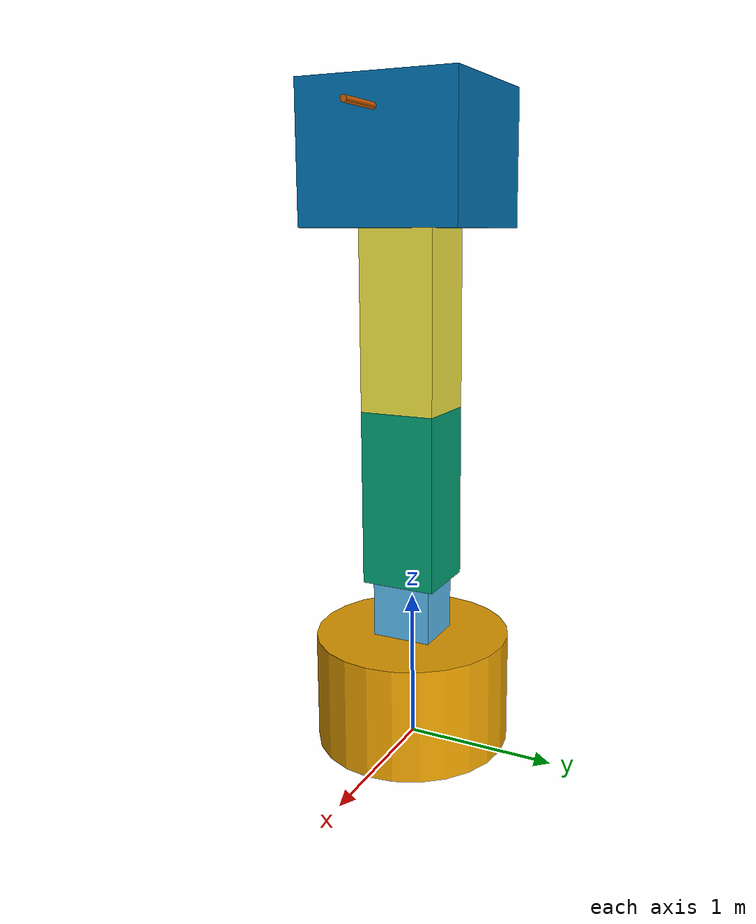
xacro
<?xml version="1.0" ?>

<!--            arm3.urdf.xacro              -->
<!-- This document describes the robot model -->
<!--   Machenical Practice Testing Version   -->
<!--        Last editted: 12/04, 2018        -->
<!--            Editor: Wolf Chen            -->

<robot name="arm" xmlns:xacro="http://www.ros.org/wiki/xacro">

  <!-- BGN - Include -->
  <xacro:include filename="$(find arm_description)/urdf/links_joints.xacro"/>
  <xacro:include filename="$(find arm_description)/urdf/robot_parameters.xacro"/>
  <xacro:include filename="$(find arm_description)/urdf/robot_parameters_ext.xacro"/>

  <!-- END - Include -->

  <!-- BGN - Robot Description -->

  <!-- Body -->
  <arm_cylinder name="${l0b}"
                mass="${base_mass}"
                origin_rpy="0 0 0" origin_xyz="0 0 ${base_z}"
                ixx="1" ixy="0" ixz="0"
                iyy="1" iyz="0"
                izz="1"
                radius="${base_r}" length="${base_l}"
                color_name="LightGrey" color="${LGrey}"/>

  <arm_joint name="base_joint" type="revolute"
             axis_xyz="0 0 1"
             limit="1.57"
             origin_rpy="0 0 0" origin_xyz="0 0 ${base_l}"
             parent="${l0b}"
             child="${m0b}"/>

  <arm_box name="${m0b}"
           mass="${basem_mass}"
           origin_rpy="0 0 0" origin_xyz="0 0 ${basem_z}"
           ixx="1" ixy="0" ixz="0"
           iyy="1" iyz="0"
           izz="1"
           size="${basem_w} ${basem_l} ${basem_h}"
           color_name="LightGrey" color="${LGrey}"/>

  <arm_joint name="shoulder_joint" type="revolute"
             axis_xyz="0 1 0"
             limit="1.57"
             origin_rpy="0 0 0" origin_xyz="0 0 ${basem_h}"
             parent="${m0b}"
             child="${l013}"/>

  <arm_box name="${l013}"
           mass="${body_mass}"
           origin_rpy="0 0 0" origin_xyz="0 0 ${body_z_3}"
           ixx="1" ixy="0" ixz="0"
           iyy="1" iyz="0"
           izz="1"
           size="${body_w} ${body_l} ${body_h_3}"
           color_name="LightGrey" color="${LGrey}"/>

  <arm_joint name="elbow_joint" type="revolute"
             axis_xyz="0 1 0"
             limit="1.57"
             origin_rpy="0 0 0" origin_xyz="0 0 ${body_h_3}"
             parent="${l013}"
             child="${l023}"/>

  <arm_box name="${l023}"
           mass="${body_mass}"
           origin_rpy="0 0 0" origin_xyz="0 0 ${body_z_3}"
           ixx="1" ixy="0" ixz="0"
           iyy="1" iyz="0"
           izz="1"
           size="${body_w} ${body_l} ${body_h_3}"
           color_name="LightGrey" color="${LGrey}"/>

  <arm_joint name="wrist_joint" type="revolute"
             axis_xyz="0 1 0"
             limit="0.785"
             origin_rpy="0 1.57 0" origin_xyz="0 0 ${body_h_3}"
             parent="${l023}"
             child="${l0h2}"/>

  <arm_box name="${l0h2}"
           mass="${head_mass_2}"
           origin_rpy="0 0 0" origin_xyz="${head_x_2} 0 0"
           ixx="1" ixy="0" ixz="0"
           iyy="1" iyz="0"
           izz="1"
           size="${head_w_2} ${head_l_2} ${head_h_2}"
           color_name="LightGreyTransparent" color="${LGrey_T}"/>

  <!-- End Effecto Description -->
  <arm_joint_con name="end_effector_motor"
                 axis_xyz="0 0 1"
                 origin_rpy="0 0 0" origin_xyz="${drills_x_2} ${drills_y_2} ${drills_z_2}"
                 parent="${l0h2}"
                 child="${sd02}"/>

  <arm_cylinder name="${sd02}"
                mass="${drills_mass}"
                origin_rpy="0 0 0" origin_xyz="0 0 0"
                ixx="1" ixy="0" ixz="0"
                iyy="1" iyz="0"
                izz="1"
                radius="${drills_r}" length="${drills_l}"
                color_name="LightGrey" color="${LGrey}"/>

  <!-- END - Robot Description -->

  <!-- Gazebo Controller Plugins -->
  <gazebo>
    <plugin name="ros_control" filename="libgazebo_ros_control.so">
    </plugin>
  </gazebo>

</robot>

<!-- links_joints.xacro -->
<!--              links_joints.xacro              -->
<!-- This document describes the global functions -->
<!--      Machenical Practice Testing Version     -->
<!--           Last editted: 11/18, 2018          -->
<!--               Editor: Wolf Chen              -->

<robot xmlns:xacro="http://www.ros.org/wiki/xacro">

  <!-- Define the "joint" description -->
  <xacro:macro name="arm_joint_s" params="name type axis_xyz limit origin_rpy origin_xyz parent child">
    <joint name="${name}" type="${type}">
      <axis xyz="${axis_xyz}"/>
      <limit effort="1000.0" lower="-${limit}" upper="${limit}" velocity="0.2"/>
      <!-- Define the origin of the NEXT link -->
      <origin rpy="${origin_rpy}" xyz="${origin_xyz}"/>
      <parent link="${parent}"/>
      <child link="${child}"/>
    </joint>
  </xacro:macro>

  <xacro:macro name="arm_joint_dl_s" params="name type axis_xyz lower upper origin_rpy origin_xyz parent child">
    <joint name="${name}" type="${type}">
      <axis xyz="${axis_xyz}"/>
      <limit effort="1000.0" lower="-${lower}" upper="${upper}" velocity="0.2"/>
      <!-- Define the origin of the NEXT link -->
      <origin rpy="${origin_rpy}" xyz="${origin_xyz}"/>
      <parent link="${parent}"/>
      <child link="${child}"/>
    </joint>
  </xacro:macro>

  <xacro:macro name="arm_joint_con_s" params="name axis_xyz origin_rpy origin_xyz parent child">
    <joint name="${name}" type="continuous">
      <axis xyz="${axis_xyz}"/>
      <limit effort="1000.0" velocity="0.2"/>
      <!-- Define the origin of the NEXT link -->
      <origin rpy="${origin_rpy}" xyz="${origin_xyz}"/>
      <parent link="${parent}"/>
      <child link="${child}"/>
    </joint>
  </xacro:macro>

  <xacro:macro name="arm_joint" params="name type axis_xyz limit origin_rpy origin_xyz parent child">
    <joint name="${name}" type="${type}">
      <axis xyz="${axis_xyz}"/>
      <limit effort="1000.0" lower="-${limit}" upper="${limit}" velocity="0.2"/>
      <!-- Define the origin of the NEXT link -->
      <origin rpy="${origin_rpy}" xyz="${origin_xyz}"/>
      <parent link="${parent}"/>
      <child link="${child}"/>
    </joint>
    <transmission name="trans_${name}">
      <type>transmission_interface/SimpleTransmission</type>
      <joint name="${name}">
        <hardwareInterface>hardware_interface/EffortJointInterface</hardwareInterface>
      </joint>
      <actuator name="motor_${name}">
        <hardwareInterface>hardware_interface/EffortJointInterface</hardwareInterface>
        <mechanicalReduction>1</mechanicalReduction>
      </actuator>
    </transmission>
  </xacro:macro>

  <xacro:macro name="arm_joint_dl" params="name type axis_xyz lower upper origin_rpy origin_xyz parent child">
    <joint name="${name}" type="${type}">
      <axis xyz="${axis_xyz}"/>
      <limit effort="1000.0" lower="-${lower}" upper="${upper}" velocity="0.2"/>
      <!-- Define the origin of the NEXT link -->
      <origin rpy="${origin_rpy}" xyz="${origin_xyz}"/>
      <parent link="${parent}"/>
      <child link="${child}"/>
    </joint>
    <transmission name="trans_${name}">
      <type>transmission_interface/SimpleTransmission</type>
      <joint name="${name}">
        <hardwareInterface>hardware_interface/EffortJointInterface</hardwareInterface>
      </joint>
      <actuator name="motor_${name}">
        <hardwareInterface>hardware_interface/EffortJointInterface</hardwareInterface>
        <mechanicalReduction>1</mechanicalReduction>
      </actuator>
    </transmission>
  </xacro:macro>

  <xacro:macro name="arm_joint_con" params="name axis_xyz origin_rpy origin_xyz parent child">
    <joint name="${name}" type="continuous">
      <axis xyz="${axis_xyz}"/>
      <limit effort="1000.0" velocity="0.2"/>
      <!-- Define the origin of the NEXT link -->
      <origin rpy="${origin_rpy}" xyz="${origin_xyz}"/>
      <parent link="${parent}"/>
      <child link="${child}"/>
    </joint>
    <transmission name="trans_${name}">
      <type>transmission_interface/SimpleTransmission</type>
      <joint name="${name}">
        <hardwareInterface>hardware_interface/EffortJointInterface</hardwareInterface>
      </joint>
      <actuator name="motor_${name}">
        <hardwareInterface>hardware_interface/EffortJointInterface</hardwareInterface>
        <mechanicalReduction>1</mechanicalReduction>
      </actuator>
    </transmission>
  </xacro:macro>

  <!-- Define the "arm body" description -->
  <xacro:macro name="arm_cylinder" params="name mass origin_rpy origin_xyz ixx ixy ixz iyy iyz izz radius length color_name color">
    <link name="${name}">
      <inertial>
        <mass value="${mass}"/>
        <origin rpy="${origin_rpy}" xyz="${origin_xyz}"/>
        <inertia ixx="${ixx}" ixy="${ixy}" ixz="${ixz}" iyy="${iyy}" iyz="${iyz}" izz="${izz}"/>
      </inertial>
      <collision>
        <origin rpy="${origin_rpy}" xyz="${origin_xyz}"/>
        <geometry>
          <cylinder radius="${radius}" length="${length}"/>
        </geometry>
      </collision>
      <visual>
        <origin rpy="${origin_rpy}" xyz="${origin_xyz}"/>
        <geometry>
          <cylinder radius="${radius}" length="${length}"/>
          <material name="${color_name}">
            <color rgba="${color}"/>
          </material>
        </geometry>
      </visual>
    </link>
  </xacro:macro>

  <xacro:macro name="arm_box" params="name mass origin_rpy origin_xyz ixx ixy ixz iyy iyz izz size color_name color">
    <link name="${name}">
      <inertial>
        <mass value="${mass}"/>
        <origin rpy="${origin_rpy}" xyz="${origin_xyz}"/>
        <inertia ixx="${ixx}" ixy="${ixy}" ixz="${ixz}" iyy="${iyy}" iyz="${iyz}" izz="${izz}"/>
      </inertial>
      <collision>
        <origin rpy="${origin_rpy}" xyz="${origin_xyz}"/>
        <geometry>
          <box size="${size}"/>
        </geometry>
      </collision>
      <visual>
        <origin rpy="${origin_rpy}" xyz="${origin_xyz}"/>
        <geometry>
          <box size="${size}"/>
          <material name="${color_name}">
            <color rgba="${color}"/>
          </material>
        </geometry>
      </visual>
    </link>
  </xacro:macro>

  <!-- Define the "transmission" description -->
  <xacro:macro name="arm_trans" params="name">
    <transmission name="trans_${name}">
      <type>transmission_interface/SimpleTransmission</type>
      <joint name="${name}">
        <hardwareInterface>hardware_interface/EffortJointInterface</hardwareInterface>
      </joint>
      <actuator name="motor_${name}">
        <hardwareInterface>hardware_interface/EffortJointInterface</hardwareInterface>
        <mechanicalReduction>1</mechanicalReduction>
      </actuator>
    </transmission>
  </xacro:macro>

</robot>

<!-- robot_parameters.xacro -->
<!--              robot_parameters.xacro              -->
<!-- This document describes the names and parameters -->
<!--        Machenical Practice Testing Version       -->
<!--             Last editted: 11/17, 2018            -->
<!--                 Editor: Wolf Chen                -->

<robot xmlns:xacro="http://www.ros.org/wiki/xacro">

  <!-- Names Description -->
  <xacro:property name="l0b" value="base_link"/>
  <xacro:property name="l01" value="link_01"/>
  <xacro:property name="l02" value="link_02"/>
  <xacro:property name="l0h" value="head_link"/>
  <xacro:property name="m0b" value="base_motor"/>
  <xacro:property name="m0d" value="drill_motor"/>
  <xacro:property name="e0s" value="EE_screw"/>
  <xacro:property name="e0L" value="EE_L-plate"/>
  <xacro:property name="edma" value="EE_drill_motor_axis"/>
  <xacro:property name="e0t" value="EE_turntable"/>
  <xacro:property name="e0db" value="EE_drill_big"/>
  <xacro:property name="e0ds" value="EE_drill_small"/>
  <xacro:property name="e0sd" value="EE_screwdriver"/>
  <xacro:property name="e0e" value="EE_ending_tube"/>

  <!-- True Names of Motors Description -->
  <xacro:property name="ground_motor_name" value="MG996R"/>
  <xacro:property name="base_motor_name" value="ARS-3216HTG+HV"/>
  <xacro:property name="body_motor_name" value="QDS-15RO"/>
  <xacro:property name="drill_motor_name" value="2212-1400KV"/>

  <!-- Body Appearances Description -->
  <xacro:property name="base_r" value="0.65"/>
  <xacro:property name="base_l" value="0.75"/>
  <xacro:property name="body_w" value="0.45"/>
  <xacro:property name="body_l" value="0.50"/>
  <xacro:property name="body_h" value="2.15"/>
  <xacro:property name="head_w" value="1.20"/>
  <xacro:property name="head_l" value="1.36"/>
  <xacro:property name="head_h" value="2.80"/>

  <!-- End Effector Appearances Description -->
  <xacro:property name="screw_r" value="0.05"/>
  <xacro:property name="screw_l" value="1.2"/>
  <xacro:property name="L_w" value="0.6"/>
  <xacro:property name="L_l" value="0.55"/>
  <xacro:property name="L_h" value="0.08"/>
  <xacro:property name="drillma_r" value="0.04"/>
  <xacro:property name="drillma_l" value="0.66"/>
  <xacro:property name="TT_r" value="0.4"/>
  <xacro:property name="TT_l" value="0.2"/>
  <xacro:property name="drillb_r" value="0.05"/>
  <xacro:property name="drillb_l" value="0.89"/>
  <xacro:property name="drills_r" value="0.05"/>
  <xacro:property name="drills_l" value="0.82"/>
  <xacro:property name="SD_r" value="0.05"/>
  <xacro:property name="SD_l" value="0.87"/>
  <xacro:property name="ET_r" value="0.0504"/>
  <xacro:property name="ET_l" value="0.075"/>

  <!-- Motors Description -->
  <xacro:property name="basem_w" value="0.35"/>
  <xacro:property name="basem_l" value="0.40"/>
  <xacro:property name="basem_h" value="0.38"/>
  <xacro:property name="drillm_r" value="0.14"/>
  <xacro:property name="drillm_l" value="0.29"/>

  <!-- Body Shape Origins Description -->
  <xacro:property name="base_z" value="0.375"/>
  <xacro:property name="basem_z" value="0.19"/>
  <xacro:property name="body_z" value="1.075"/>
  <xacro:property name="head_x" value="-0.60"/>
  <xacro:property name="head_y" value="0.00"/>
  <xacro:property name="head_z" value="0.40"/>

  <!-- End Effector Origins Description -->
  <xacro:property name="drillm_x" value="-0.7"/>
  <xacro:property name="drillm_y" value="-0.06"/>
  <xacro:property name="drillm_z" value="-0.135"/>
  <xacro:property name="drillm_zz" value="0.145"/>
  <xacro:property name="drillma_z" value="0.34"/>
  <xacro:property name="TT_x" value="-0.394"/>
  <xacro:property name="TT_y" value="-0.06"/>
  <xacro:property name="TT_z" value="0.78"/>
  <xacro:property name="drillb_x" value="-0.306"/>
  <xacro:property name="drillb_z" value="0.445"/>
  <xacro:property name="drills_x" value="-0.216"/>
  <xacro:property name="drills_y" value="0.216"/>
  <xacro:property name="drills_z" value="0.41"/>
  <xacro:property name="SD_x" value="-0.216"/>
  <xacro:property name="SD_y" value="-0.216"/>
  <xacro:property name="SD_z" value="0.435"/>
  <xacro:property name="tool_z" value="-0.06"/>
  <xacro:property name="ET_x" value="-0.7"/>
  <xacro:property name="ET_y" value="-0.06"/>
  <xacro:property name="ET_z" value="1.8"/>
  <xacro:property name="ET_zz" value="0.0375"/>

  <!-- Physical Values Description -->
  <xacro:property name="base_mass" value="999"/>
  <xacro:property name="basem_mass" value="1"/>
  <xacro:property name="body_mass" value="2"/>
  <xacro:property name="head_mass" value="5"/>
  <xacro:property name="drillm_mass" value="1"/>
  <xacro:property name="drillma_mass" value="0.5"/>
  <xacro:property name="TT_mass" value="0.25"/>
  <xacro:property name="drillb_mass" value="0.25"/>
  <xacro:property name="drills_mass" value="0.25"/>
  <xacro:property name="SD_mass" value="0.25"/>
  <xacro:property name="ET_mass" value="0.01"/>

  <!-- Color Description -->
  <xacro:property name="LGrey" value="0.7 0.7 0.7 1.0"/>
  <xacro:property name="LGrey_T" value="0.7 0.7 0.7 0.5"/>
  <xacro:property name="Black" value="1 1 1 1"/>

</robot>

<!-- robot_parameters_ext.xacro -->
<!--            robot_parameters_ext.xacro            -->
<!-- This document describes the names and parameters -->
<!--        Machenical Practice Testing Version       -->
<!--             Last editted: 11/29, 2018            -->
<!--                 Editor: Wolf Chen                -->

<robot xmlns:xacro="http://www.ros.org/wiki/xacro">

  <!-- Arm2 -->

  <!-- Name Description -->
  <xacro:property name="l0h2" value="head_link_2"/>
  <xacro:property name="sd02" value="small_drill_2"/>
  <xacro:property name="l012" value="link_01_2"/>
  <xacro:property name="l022" value="link_02_2"/>

  <!-- Body Appearance Description -->
  <xacro:property name="head_w_2" value="0.86"/>
  <xacro:property name="head_l_2" value="1.05"/>
  <xacro:property name="head_h_2" value="0.95"/>
  <xacro:property name="drills_r" value="0.02"/>
  <xacro:property name="drills_l" value="1.28"/>
  <xacro:property name="body_h_2" value="1.05"/>

  <!-- Mass Description -->
  <xacro:property name="head_mass_2" value="2"/>
  <xacro:property name="drills_mass" value="1.5"/>

  <!-- Origin Description -->
  <xacro:property name="head_x_2" value="-0.43"/>
  <xacro:property name="drills_x_2" value="-0.67"/>
  <xacro:property name="drills_y_2" value="0"/>
  <xacro:property name="drills_z_2" value="0.165"/>
  <xacro:property name="body_z_2" value="0.525"/>

  <!-- Arm3 -->

  <!-- Name Description -->
  <xacro:property name="l013" value="link_01_3"/>
  <xacro:property name="l023" value="link_02_3"/>

  <!-- Body Appearance Description -->
  <xacro:property name="body_h_3" value="1.15"/>

  <!-- Origin Description -->
  <xacro:property name="body_z_3" value="0.575"/>

</robot>
